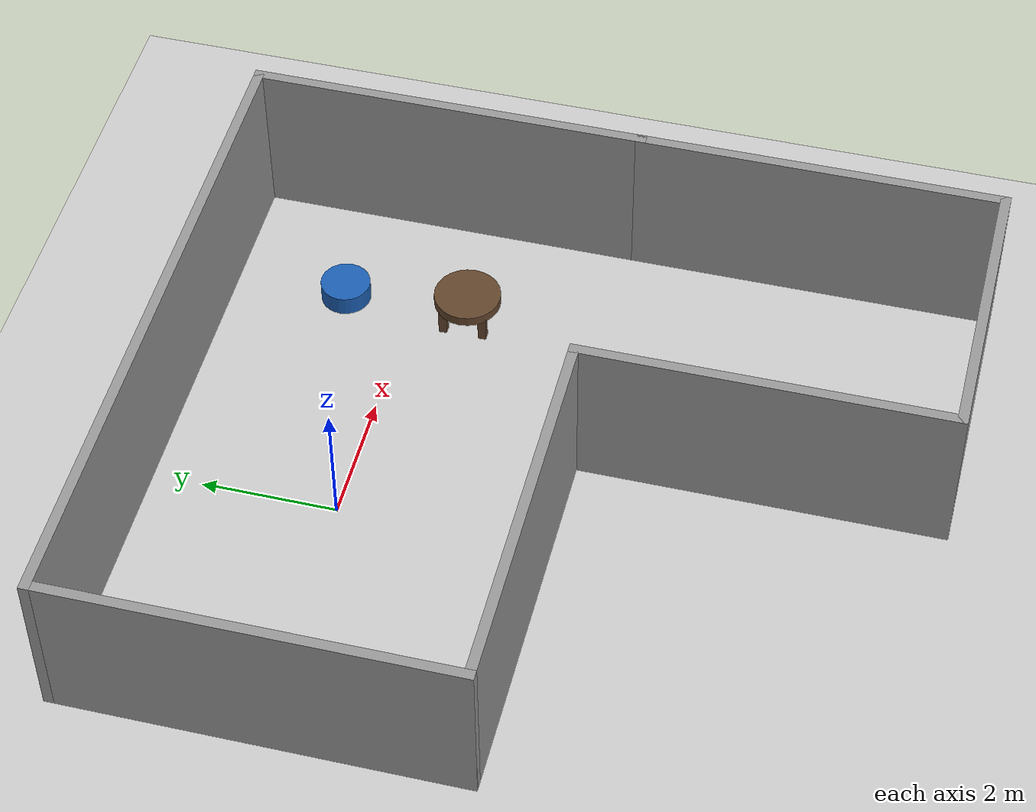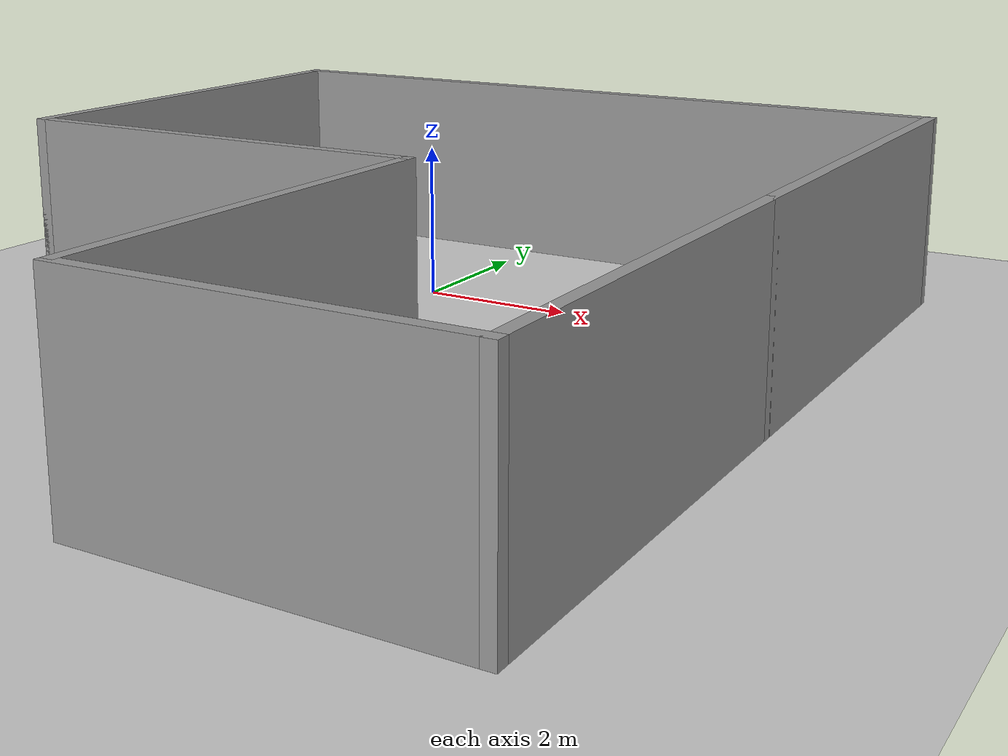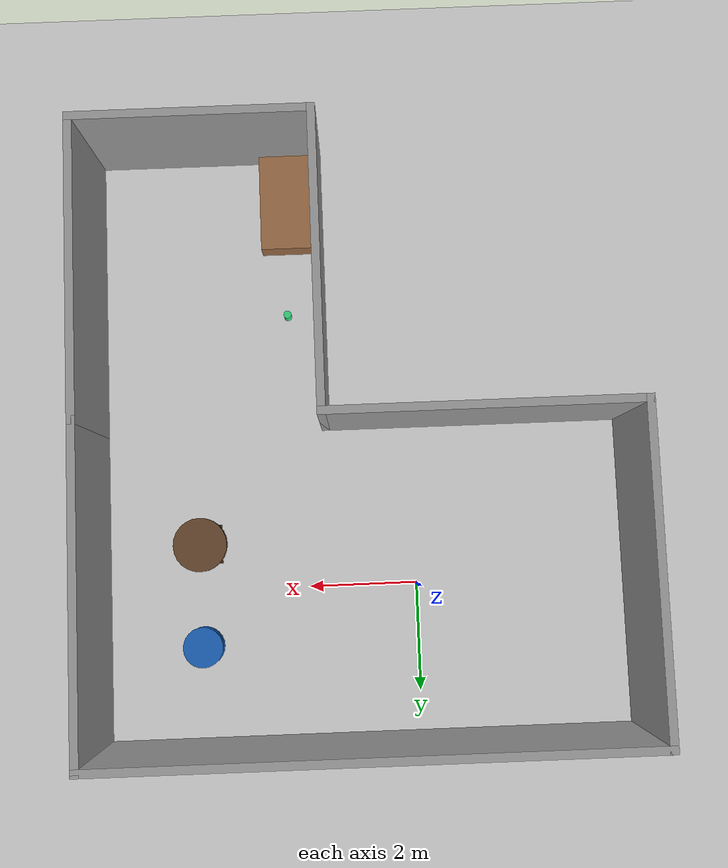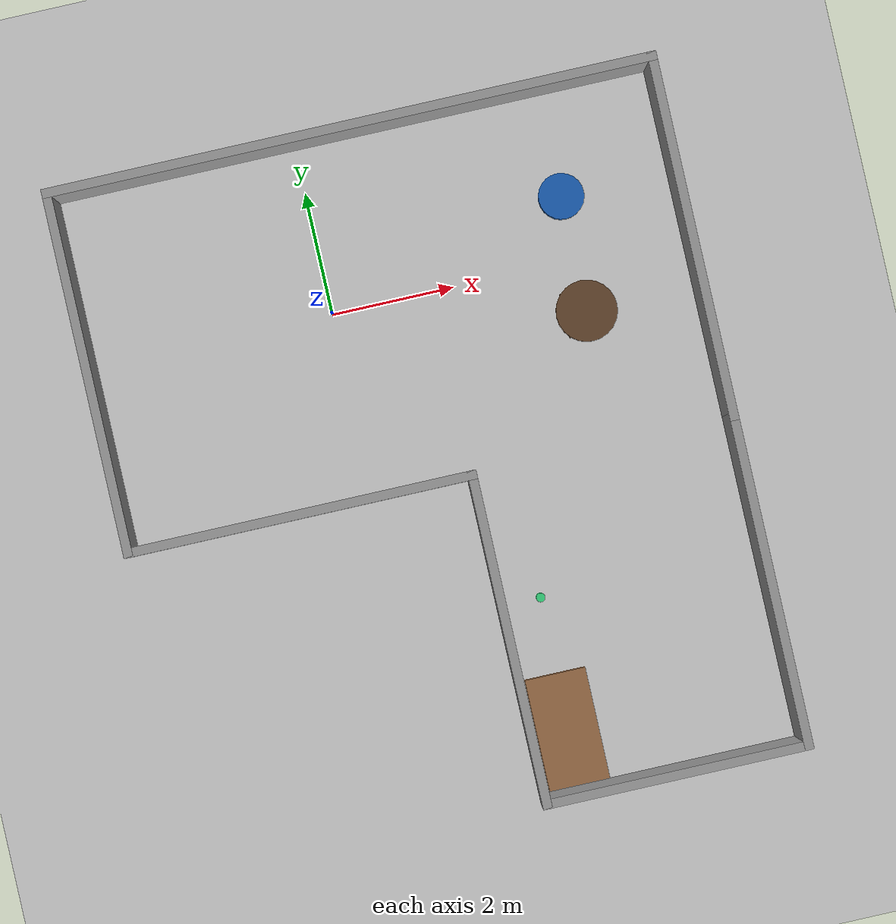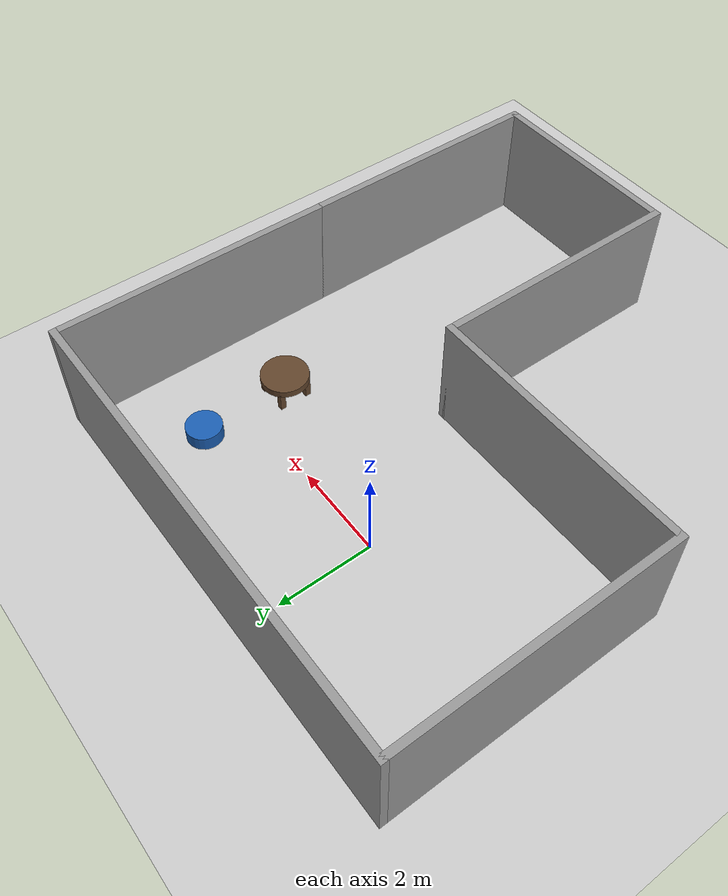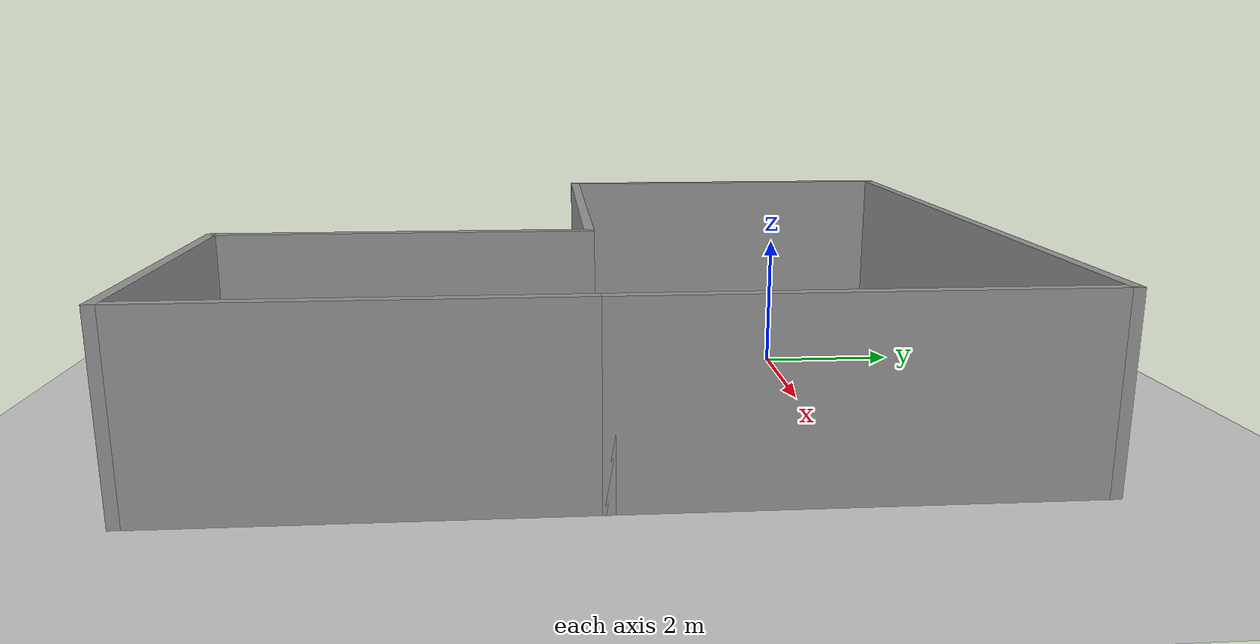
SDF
<sdf version="1.7">
 <world name="default">
  <light name="sun" type="directional">
   <pose>0 0 10 0 -0 0</pose>
   <diffuse>0.8 0.8 0.8 1</diffuse>
   <specular>0.2 0.2 0.2 1</specular>
   <attenuation>
    <range>1000</range>
    <constant>0.9</constant>
    <linear>0.01</linear>
    <quadratic>0.001</quadratic>
   </attenuation>
   <direction>-0.5 0.1 -0.9</direction>
   <spot><inner_angle>0</inner_angle><outer_angle>0</outer_angle><falloff>0</falloff></spot>
  </light>
  <model name="ground_plane">
   <static>1</static>
   <link name="link">
    <collision name="collision">
     <geometry><plane><normal>0 0 1</normal><size>100 100</size></plane></geometry>
     <surface><friction><ode><mu>100</mu><mu2>50</mu2></ode></friction></surface>
    </collision>
    <visual name="visual">
     <cast_shadows>0</cast_shadows>
     <geometry><plane><normal>0 0 1</normal><size>100 100</size></plane></geometry>
     <material>
      <script><uri>file://media/materials/scripts/gazebo.material</uri><name>Gazebo/Grey</name></script>
     </material>
    </visual>
   </link>
  </model>
  <gravity>0 0 -9.8</gravity>
  <magnetic_field>6e-06 2.3e-05 -4.2e-05</magnetic_field>
  <atmosphere type="adiabatic"/>
  <physics type="ode">
   <max_step_size>0.001</max_step_size>
   <real_time_factor>1</real_time_factor>
   <real_time_update_rate>1000</real_time_update_rate>
  </physics>
  <scene><ambient>0.4 0.4 0.4 1</ambient><background>0.7 0.7 0.7 1</background><shadows>1</shadows></scene>
  <audio><device>default</device></audio>
  <spherical_coordinates>
   <surface_model>EARTH_WGS84</surface_model>
   <latitude_deg>0</latitude_deg>
   <longitude_deg>0</longitude_deg>
   <elevation>0</elevation>
   <heading_deg>0</heading_deg>
  </spherical_coordinates>
  <model name="lan_canzhaowu1">
   <link name="link">
    <inertial>
     <mass>1</mass>
     <inertia><ixx>0.145833</ixx><ixy>0</ixy><ixz>0</ixz><iyy>0.145833</iyy><iyz>0</iyz><izz>0.125</izz></inertia>
    </inertial>
    <visual name="visual">
     <geometry><cylinder><radius>0.373748</radius><length>0.308137</length></cylinder></geometry>
     <material>
      <script><name>Gazebo/Grey</name><uri>file://media/materials/scripts/gazebo.material</uri></script>
      <shader type="pixel"><normal_map>__default__</normal_map></shader>
      <ambient>0.102 0.373 0.706 1</ambient>
      <diffuse>0.7 0.7 0.7 1</diffuse>
      <specular>0.01 0.01 0.01 1</specular>
      <emissive>0 0 0 1</emissive>
     </material>
    </visual>
    <collision name="collision">
     <geometry><cylinder><radius>0.373748</radius><length>0.308137</length></cylinder></geometry>
     <surface>
      <friction>
       <ode><mu>1</mu><mu2>1</mu2><fdir1>0 0 0</fdir1><slip1>0</slip1><slip2>0</slip2></ode>
       <torsional>
        <coefficient>1</coefficient>
        <patch_radius>0</patch_radius>
        <surface_radius>0</surface_radius>
        <use_patch_radius>1</use_patch_radius>
        <ode><slip>0</slip></ode>
       </torsional>
      </friction>
      <bounce><restitution_coefficient>0</restitution_coefficient><threshold>1e+06</threshold></bounce>
      <contact>
       <collide_without_contact>0</collide_without_contact>
       <collide_without_contact_bitmask>1</collide_without_contact_bitmask>
       <collide_bitmask>1</collide_bitmask>
       <ode>
        <soft_cfm>0</soft_cfm>
        <soft_erp>0.2</soft_erp>
        <kp>1e+13</kp>
        <kd>1</kd>
        <max_vel>0.01</max_vel>
        <min_depth>0</min_depth>
       </ode>
       <bullet>
        <split_impulse>1</split_impulse>
        <split_impulse_penetration_threshold>-0.01</split_impulse_penetration_threshold>
        <soft_cfm>0</soft_cfm>
        <soft_erp>0.2</soft_erp>
        <kp>1e+13</kp>
        <kd>1</kd>
       </bullet>
      </contact>
     </surface>
    </collision>
   </link>
   <static>0</static>
   <pose>4.02725 1.04197 0.154068 0 -0 0</pose>
  </model>
  <model name="zuozi4">
   <link name="link">
    <inertial>
     <mass>0.152216</mass>
     <inertia>
      <ixx>0.00980743</ixx>
      <ixy>0</ixy>
      <ixz>0</ixz>
      <iyy>0.00980743</iyy>
      <iyz>0</iyz>
      <izz>0.0190271</izz>
     </inertia>
    </inertial>
    <pose>0 0.025356 -0.074591 0 -0 0</pose>
    <visual name="visual">
     <geometry><cylinder><radius>0.5</radius><length>0.152217</length></cylinder></geometry>
     <material>
      <script><name>Gazebo/Grey</name><uri>file://media/materials/scripts/gazebo.material</uri></script>
      <shader type="pixel"><normal_map>__default__</normal_map></shader>
      <ambient>0.388 0.271 0.173 1</ambient>
      <diffuse>0.7 0.7 0.7 1</diffuse>
      <specular>0.01 0.01 0.01 1</specular>
      <emissive>0 0 0 1</emissive>
     </material>
    </visual>
    <collision name="collision">
     <geometry><cylinder><radius>0.5</radius><length>0.152217</length></cylinder></geometry>
     <surface>
      <friction>
       <ode><mu>1</mu><mu2>1</mu2><fdir1>0 0 0</fdir1><slip1>0</slip1><slip2>0</slip2></ode>
       <torsional>
        <coefficient>1</coefficient>
        <patch_radius>0</patch_radius>
        <surface_radius>0</surface_radius>
        <use_patch_radius>1</use_patch_radius>
        <ode><slip>0</slip></ode>
       </torsional>
      </friction>
      <bounce><restitution_coefficient>0</restitution_coefficient><threshold>1e+06</threshold></bounce>
      <contact>
       <collide_without_contact>0</collide_without_contact>
       <collide_without_contact_bitmask>1</collide_without_contact_bitmask>
       <collide_bitmask>1</collide_bitmask>
       <ode>
        <soft_cfm>0</soft_cfm>
        <soft_erp>0.2</soft_erp>
        <kp>1e+13</kp>
        <kd>1</kd>
        <max_vel>0.01</max_vel>
        <min_depth>0</min_depth>
       </ode>
       <bullet>
        <split_impulse>1</split_impulse>
        <split_impulse_penetration_threshold>-0.01</split_impulse_penetration_threshold>
        <soft_cfm>0</soft_cfm>
        <soft_erp>0.2</soft_erp>
        <kp>1e+13</kp>
        <kd>1</kd>
       </bullet>
      </contact>
     </surface>
    </collision>
   </link>
   <link name="link_1">
    <inertial>
     <mass>0.00581735</mass>
     <inertia>
      <ixx>9.222e-05</ixx>
      <ixy>0</ixy>
      <ixz>0</ixz>
      <iyy>9.12e-05</iyy>
      <iyz>0</iyz>
      <izz>1.353e-05</izz>
     </inertia>
    </inertial>
    <pose>-0.3 0.325356 -0.324591 0 -0 0</pose>
    <visual name="visual">
     <geometry><box><size>0.113572 0.122532 0.418601</size></box></geometry>
     <material>
      <lighting>1</lighting>
      <script><uri>file://media/materials/scripts/gazebo.material</uri><name>Gazebo/Grey</name></script>
      <shader type="pixel"><normal_map>__default__</normal_map></shader>
      <ambient>0.388 0.271 0.173 1</ambient>
      <diffuse>0.7 0.7 0.7 1</diffuse>
      <specular>0.01 0.01 0.01 1</specular>
      <emissive>0 0 0 1</emissive>
     </material>
    </visual>
    <collision name="collision">
     <geometry><box><size>0.113572 0.122532 0.418601</size></box></geometry>
     <surface>
      <friction>
       <ode><mu>1</mu><mu2>1</mu2><fdir1>0 0 0</fdir1><slip1>0</slip1><slip2>0</slip2></ode>
       <torsional>
        <coefficient>1</coefficient>
        <patch_radius>0</patch_radius>
        <surface_radius>0</surface_radius>
        <use_patch_radius>1</use_patch_radius>
        <ode><slip>0</slip></ode>
       </torsional>
      </friction>
      <bounce><restitution_coefficient>0</restitution_coefficient><threshold>1e+06</threshold></bounce>
      <contact>
       <collide_without_contact>0</collide_without_contact>
       <collide_without_contact_bitmask>1</collide_without_contact_bitmask>
       <collide_bitmask>1</collide_bitmask>
       <ode>
        <soft_cfm>0</soft_cfm>
        <soft_erp>0.2</soft_erp>
        <kp>1e+13</kp>
        <kd>1</kd>
        <max_vel>0.01</max_vel>
        <min_depth>0</min_depth>
       </ode>
       <bullet>
        <split_impulse>1</split_impulse>
        <split_impulse_penetration_threshold>-0.01</split_impulse_penetration_threshold>
        <soft_cfm>0</soft_cfm>
        <soft_erp>0.2</soft_erp>
        <kp>1e+13</kp>
        <kd>1</kd>
       </bullet>
      </contact>
     </surface>
    </collision>
   </link>
   <link name="link_1_clone">
    <inertial>
     <mass>0.00581735</mass>
     <inertia>
      <ixx>9.222e-05</ixx>
      <ixy>0</ixy>
      <ixz>0</ixz>
      <iyy>9.12e-05</iyy>
      <iyz>0</iyz>
      <izz>1.353e-05</izz>
     </inertia>
    </inertial>
    <pose>0.3 0.325356 -0.324591 0 -0 0</pose>
    <visual name="visual">
     <geometry><box><size>0.113572 0.122532 0.418601</size></box></geometry>
     <material>
      <lighting>1</lighting>
      <script><uri>file://media/materials/scripts/gazebo.material</uri><name>Gazebo/Grey</name></script>
      <shader type="pixel"><normal_map>__default__</normal_map></shader>
      <ambient>0.388 0.271 0.173 1</ambient>
      <diffuse>0.7 0.7 0.7 1</diffuse>
      <specular>0.01 0.01 0.01 1</specular>
      <emissive>0 0 0 1</emissive>
     </material>
    </visual>
    <collision name="collision">
     <geometry><box><size>0.113572 0.122532 0.418601</size></box></geometry>
     <surface>
      <friction>
       <ode><mu>1</mu><mu2>1</mu2><fdir1>0 0 0</fdir1><slip1>0</slip1><slip2>0</slip2></ode>
       <torsional>
        <coefficient>1</coefficient>
        <patch_radius>0</patch_radius>
        <surface_radius>0</surface_radius>
        <use_patch_radius>1</use_patch_radius>
        <ode><slip>0</slip></ode>
       </torsional>
      </friction>
      <bounce><restitution_coefficient>0</restitution_coefficient><threshold>1e+06</threshold></bounce>
      <contact>
       <collide_without_contact>0</collide_without_contact>
       <collide_without_contact_bitmask>1</collide_without_contact_bitmask>
       <collide_bitmask>1</collide_bitmask>
       <ode>
        <soft_cfm>0</soft_cfm>
        <soft_erp>0.2</soft_erp>
        <kp>1e+13</kp>
        <kd>1</kd>
        <max_vel>0.01</max_vel>
        <min_depth>0</min_depth>
       </ode>
       <bullet>
        <split_impulse>1</split_impulse>
        <split_impulse_penetration_threshold>-0.01</split_impulse_penetration_threshold>
        <soft_cfm>0</soft_cfm>
        <soft_erp>0.2</soft_erp>
        <kp>1e+13</kp>
        <kd>1</kd>
       </bullet>
      </contact>
     </surface>
    </collision>
   </link>
   <link name="link_1_clone_0">
    <inertial>
     <mass>0.00581735</mass>
     <inertia>
      <ixx>9.222e-05</ixx>
      <ixy>0</ixy>
      <ixz>0</ixz>
      <iyy>9.12e-05</iyy>
      <iyz>0</iyz>
      <izz>1.353e-05</izz>
     </inertia>
    </inertial>
    <pose>0.3 -0.274644 -0.324591 0 -0 0</pose>
    <visual name="visual">
     <geometry><box><size>0.113572 0.122532 0.418601</size></box></geometry>
     <material>
      <lighting>1</lighting>
      <script><uri>file://media/materials/scripts/gazebo.material</uri><name>Gazebo/Grey</name></script>
      <shader type="pixel"><normal_map>__default__</normal_map></shader>
      <ambient>0.388 0.271 0.173 1</ambient>
      <diffuse>0.7 0.7 0.7 1</diffuse>
      <specular>0.01 0.01 0.01 1</specular>
      <emissive>0 0 0 1</emissive>
     </material>
    </visual>
    <collision name="collision">
     <geometry><box><size>0.113572 0.122532 0.418601</size></box></geometry>
     <surface>
      <friction>
       <ode><mu>1</mu><mu2>1</mu2><fdir1>0 0 0</fdir1><slip1>0</slip1><slip2>0</slip2></ode>
       <torsional>
        <coefficient>1</coefficient>
        <patch_radius>0</patch_radius>
        <surface_radius>0</surface_radius>
        <use_patch_radius>1</use_patch_radius>
        <ode><slip>0</slip></ode>
       </torsional>
      </friction>
      <bounce><restitution_coefficient>0</restitution_coefficient><threshold>1e+06</threshold></bounce>
      <contact>
       <collide_without_contact>0</collide_without_contact>
       <collide_without_contact_bitmask>1</collide_without_contact_bitmask>
       <collide_bitmask>1</collide_bitmask>
       <ode>
        <soft_cfm>0</soft_cfm>
        <soft_erp>0.2</soft_erp>
        <kp>1e+13</kp>
        <kd>1</kd>
        <max_vel>0.01</max_vel>
        <min_depth>0</min_depth>
       </ode>
       <bullet>
        <split_impulse>1</split_impulse>
        <split_impulse_penetration_threshold>-0.01</split_impulse_penetration_threshold>
        <soft_cfm>0</soft_cfm>
        <soft_erp>0.2</soft_erp>
        <kp>1e+13</kp>
        <kd>1</kd>
       </bullet>
      </contact>
     </surface>
    </collision>
   </link>
   <link name="link_1_clone_1">
    <inertial>
     <mass>0.00581735</mass>
     <inertia>
      <ixx>9.222e-05</ixx>
      <ixy>0</ixy>
      <ixz>0</ixz>
      <iyy>9.12e-05</iyy>
      <iyz>0</iyz>
      <izz>1.353e-05</izz>
     </inertia>
    </inertial>
    <pose>-0.3 -0.274644 -0.324591 0 -0 0</pose>
    <visual name="visual">
     <geometry><box><size>0.113572 0.122532 0.418601</size></box></geometry>
     <material>
      <lighting>1</lighting>
      <script><uri>file://media/materials/scripts/gazebo.material</uri><name>Gazebo/Grey</name></script>
      <shader type="pixel"><normal_map>__default__</normal_map></shader>
      <ambient>0.388 0.271 0.173 1</ambient>
      <diffuse>0.7 0.7 0.7 1</diffuse>
      <specular>0.01 0.01 0.01 1</specular>
      <emissive>0 0 0 1</emissive>
     </material>
    </visual>
    <collision name="collision">
     <geometry><box><size>0.113572 0.122532 0.418601</size></box></geometry>
     <surface>
      <friction>
       <ode><mu>1</mu><mu2>1</mu2><fdir1>0 0 0</fdir1><slip1>0</slip1><slip2>0</slip2></ode>
       <torsional>
        <coefficient>1</coefficient>
        <patch_radius>0</patch_radius>
        <surface_radius>0</surface_radius>
        <use_patch_radius>1</use_patch_radius>
        <ode><slip>0</slip></ode>
       </torsional>
      </friction>
      <bounce><restitution_coefficient>0</restitution_coefficient><threshold>1e+06</threshold></bounce>
      <contact>
       <collide_without_contact>0</collide_without_contact>
       <collide_without_contact_bitmask>1</collide_without_contact_bitmask>
       <collide_bitmask>1</collide_bitmask>
       <ode>
        <soft_cfm>0</soft_cfm>
        <soft_erp>0.2</soft_erp>
        <kp>1e+13</kp>
        <kd>1</kd>
        <max_vel>0.01</max_vel>
        <min_depth>0</min_depth>
       </ode>
       <bullet>
        <split_impulse>1</split_impulse>
        <split_impulse_penetration_threshold>-0.01</split_impulse_penetration_threshold>
        <soft_cfm>0</soft_cfm>
        <soft_erp>0.2</soft_erp>
        <kp>1e+13</kp>
        <kd>1</kd>
       </bullet>
      </contact>
     </surface>
    </collision>
   </link>
   <joint name="link_JOINT_0" type="revolute">
    <parent>link</parent>
    <child>link_1</child>
    <axis>
     <xyz>1 0 0</xyz>
     <limit>
      <lower>-1.79769e+308</lower>
      <upper>1.79769e+308</upper>
      <effort>-1</effort>
      <velocity>-1</velocity>
     </limit>
     <dynamics>
      <spring_reference>0</spring_reference>
      <spring_stiffness>0</spring_stiffness>
      <damping>0</damping>
     </dynamics>
    </axis>
    <physics>
     <ode><limit><cfm>0</cfm><erp>0.2</erp></limit><suspension><cfm>0</cfm><erp>0.2</erp></suspension></ode>
    </physics>
   </joint>
   <joint name="link_JOINT_1" type="revolute">
    <parent>link</parent>
    <child>link_1_clone</child>
    <axis>
     <xyz>1 0 0</xyz>
     <limit>
      <lower>-1.79769e+308</lower>
      <upper>1.79769e+308</upper>
      <effort>-1</effort>
      <velocity>-1</velocity>
     </limit>
     <dynamics>
      <spring_reference>0</spring_reference>
      <spring_stiffness>0</spring_stiffness>
      <damping>0</damping>
     </dynamics>
    </axis>
    <physics>
     <ode><limit><cfm>0</cfm><erp>0.2</erp></limit><suspension><cfm>0</cfm><erp>0.2</erp></suspension></ode>
    </physics>
   </joint>
   <joint name="link_JOINT_2" type="revolute">
    <parent>link</parent>
    <child>link_1_clone_0</child>
    <axis>
     <xyz>1 0 0</xyz>
     <limit>
      <lower>-1.79769e+308</lower>
      <upper>1.79769e+308</upper>
      <effort>-1</effort>
      <velocity>-1</velocity>
     </limit>
     <dynamics>
      <spring_reference>0</spring_reference>
      <spring_stiffness>0</spring_stiffness>
      <damping>0</damping>
     </dynamics>
    </axis>
    <physics>
     <ode><limit><cfm>0</cfm><erp>0.2</erp></limit><suspension><cfm>0</cfm><erp>0.2</erp></suspension></ode>
    </physics>
   </joint>
   <joint name="link_JOINT_3" type="revolute">
    <parent>link</parent>
    <child>link_1_clone_1</child>
    <axis>
     <xyz>1 0 0</xyz>
     <limit>
      <lower>-1.79769e+308</lower>
      <upper>1.79769e+308</upper>
      <effort>-1</effort>
      <velocity>-1</velocity>
     </limit>
     <dynamics>
      <spring_reference>0</spring_reference>
      <spring_stiffness>0</spring_stiffness>
      <damping>0</damping>
     </dynamics>
    </axis>
    <physics>
     <ode><limit><cfm>0</cfm><erp>0.2</erp></limit><suspension><cfm>0</cfm><erp>0.2</erp></suspension></ode>
    </physics>
   </joint>
   <static>0</static>
   <pose>4.01301 -0.888203 0.533891 1e-06 -0 0.009792</pose>
  </model>
  <model name="Untitled5">
   <pose>0.932417 -2.79553 0 0 -0 0</pose>
   <link name="Wall_10">
    <collision name="Wall_10_Collision">
     <geometry><box><size>6 0.15 2.5</size></box></geometry>
     <pose>0 0 1.25 0 -0 0</pose>
    </collision>
    <visual name="Wall_10_Visual">
     <pose>0 0 1.25 0 -0 0</pose>
     <geometry><box><size>6 0.15 2.5</size></box></geometry>
     <material>
      <script><uri>file://media/materials/scripts/gazebo.material</uri><name>Gazebo/Grey</name></script>
      <ambient>1 1 1 1</ambient>
     </material>
     <meta><layer>0</layer></meta>
    </visual>
    <pose>4.925 2.675 0 0 -0 1.5708</pose>
   </link>
   <link name="Wall_11">
    <collision name="Wall_11_Collision">
     <geometry><box><size>10 0.15 2.5</size></box></geometry>
     <pose>0 0 1.25 0 -0 0</pose>
    </collision>
    <visual name="Wall_11_Visual">
     <pose>0 0 1.25 0 -0 0</pose>
     <geometry><box><size>10 0.15 2.5</size></box></geometry>
     <material>
      <script><uri>file://media/materials/scripts/gazebo.material</uri><name>Gazebo/Grey</name></script>
      <ambient>1 1 1 1</ambient>
     </material>
     <meta><layer>0</layer></meta>
    </visual>
    <pose>-0 5.6 0 0 -0 3.14159</pose>
   </link>
   <link name="Wall_12">
    <collision name="Wall_12_Collision">
     <geometry><box><size>6 0.15 2.5</size></box></geometry>
     <pose>0 0 1.25 0 -0 0</pose>
    </collision>
    <visual name="Wall_12_Visual">
     <pose>0 0 1.25 0 -0 0</pose>
     <geometry><box><size>6 0.15 2.5</size></box></geometry>
     <material>
      <script><uri>file://media/materials/scripts/gazebo.material</uri><name>Gazebo/Grey</name></script>
      <ambient>1 1 1 1</ambient>
     </material>
     <meta><layer>0</layer></meta>
    </visual>
    <pose>-4.925 2.675 0 0 -0 -1.5708</pose>
   </link>
   <link name="Wall_14">
    <collision name="Wall_14_Collision">
     <geometry><box><size>5.75 0.15 2.5</size></box></geometry>
     <pose>0 0 1.25 0 -0 0</pose>
    </collision>
    <visual name="Wall_14_Visual">
     <pose>0 0 1.25 0 -0 0</pose>
     <geometry><box><size>5.75 0.15 2.5</size></box></geometry>
     <material>
      <script><uri>file://media/materials/scripts/gazebo.material</uri><name>Gazebo/Grey</name></script>
      <ambient>1 1 1 1</ambient>
     </material>
     <meta><layer>0</layer></meta>
    </visual>
    <pose>-2.125 -0.25 0 0 -0 0</pose>
   </link>
   <link name="Wall_15">
    <collision name="Wall_15_Collision">
     <geometry><box><size>5.5 0.15 2.5</size></box></geometry>
     <pose>0 0 1.25 0 -0 0</pose>
    </collision>
    <visual name="Wall_15_Visual">
     <pose>0 0 1.25 0 -0 0</pose>
     <geometry><box><size>5.5 0.15 2.5</size></box></geometry>
     <material>
      <script><uri>file://media/materials/scripts/gazebo.material</uri><name>Gazebo/Grey</name></script>
      <ambient>1 1 1 1</ambient>
     </material>
     <meta><layer>0</layer></meta>
    </visual>
    <pose>0.675 -2.925 0 0 -0 -1.5708</pose>
   </link>
   <link name="Wall_21">
    <collision name="Wall_21_Collision">
     <geometry><box><size>5.5 0.15 2.5</size></box></geometry>
     <pose>0 0 1.25 0 -0 0</pose>
    </collision>
    <visual name="Wall_21_Visual">
     <pose>0 0 1.25 0 -0 0</pose>
     <geometry><box><size>5.5 0.15 2.5</size></box></geometry>
     <material>
      <script><uri>file://media/materials/scripts/gazebo.material</uri><name>Gazebo/Grey</name></script>
      <ambient>1 1 1 1</ambient>
     </material>
     <meta><layer>0</layer></meta>
    </visual>
    <pose>4.925 -2.925 0 0 -0 -1.5708</pose>
   </link>
   <link name="Wall_22">
    <collision name="Wall_22_Collision">
     <geometry><box><size>4.4 0.15 2.5</size></box></geometry>
     <pose>0 0 1.25 0 -0 0</pose>
    </collision>
    <visual name="Wall_22_Visual">
     <pose>0 0 1.25 0 -0 0</pose>
     <geometry><box><size>4.4 0.15 2.5</size></box></geometry>
     <material>
      <script><uri>file://media/materials/scripts/gazebo.material</uri><name>Gazebo/Grey</name></script>
      <ambient>1 1 1 1</ambient>
     </material>
     <meta><layer>0</layer></meta>
    </visual>
    <pose>2.8 -5.6 0 0 -0 -3.14159</pose>
   </link>
   <static>1</static>
  </model>
  <model name="lv_lajitong">
   <link name="link">
    <inertial>
     <mass>1</mass>
     <inertia><ixx>0.145833</ixx><ixy>0</ixy><ixz>0</ixz><iyy>0.145833</iyy><iyz>0</iyz><izz>0.125</izz></inertia>
    </inertial>
    <visual name="visual">
     <geometry><cylinder><radius>0.0738659</radius><length>0.256539</length></cylinder></geometry>
     <material>
      <script><name>Gazebo/Grey</name><uri>file://media/materials/scripts/gazebo.material</uri></script>
      <shader type="pixel"><normal_map>__default__</normal_map></shader>
      <ambient>0.2 0.82 0.478 1</ambient>
      <diffuse>0.7 0.7 0.7 1</diffuse>
      <specular>0.01 0.01 0.01 1</specular>
      <emissive>0 0 0 1</emissive>
     </material>
    </visual>
    <collision name="collision">
     <geometry><cylinder><radius>0.073866</radius><length>0.256539</length></cylinder></geometry>
     <surface>
      <friction>
       <ode><mu>1</mu><mu2>1</mu2><fdir1>0 0 0</fdir1><slip1>0</slip1><slip2>0</slip2></ode>
       <torsional>
        <coefficient>1</coefficient>
        <patch_radius>0</patch_radius>
        <surface_radius>0</surface_radius>
        <use_patch_radius>1</use_patch_radius>
        <ode><slip>0</slip></ode>
       </torsional>
      </friction>
      <bounce><restitution_coefficient>0</restitution_coefficient><threshold>1e+06</threshold></bounce>
      <contact>
       <collide_without_contact>0</collide_without_contact>
       <collide_without_contact_bitmask>1</collide_without_contact_bitmask>
       <collide_bitmask>1</collide_bitmask>
       <ode>
        <soft_cfm>0</soft_cfm>
        <soft_erp>0.2</soft_erp>
        <kp>1e+13</kp>
        <kd>1</kd>
        <max_vel>0.01</max_vel>
        <min_depth>0</min_depth>
       </ode>
       <bullet>
        <split_impulse>1</split_impulse>
        <split_impulse_penetration_threshold>-0.01</split_impulse_penetration_threshold>
        <soft_cfm>0</soft_cfm>
        <soft_erp>0.2</soft_erp>
        <kp>1e+13</kp>
        <kd>1</kd>
       </bullet>
      </contact>
     </surface>
    </collision>
   </link>
   <static>0</static>
   <pose>2.26511 -5.22014 0.12826 0 -0 0.001788</pose>
  </model>
  <model name="zong_chuang">
   <link name="link">
    <inertial>
     <mass>1</mass>
     <inertia>
      <ixx>0.166667</ixx>
      <ixy>0</ixy>
      <ixz>0</ixz>
      <iyy>0.166667</iyy>
      <iyz>0</iyz>
      <izz>0.166667</izz>
     </inertia>
    </inertial>
    <visual name="visual">
     <geometry><box><size>1 1.83631 0.441286</size></box></geometry>
     <material>
      <script><name>Gazebo/Grey</name><uri>file://media/materials/scripts/gazebo.material</uri></script>
      <shader type="pixel"><normal_map>__default__</normal_map></shader>
      <ambient>0.596 0.416 0.267 1</ambient>
      <diffuse>0.7 0.7 0.7 1</diffuse>
      <specular>0.01 0.01 0.01 1</specular>
      <emissive>0 0 0 1</emissive>
     </material>
    </visual>
    <collision name="collision">
     <geometry><box><size>1 1.83631 0.441286</size></box></geometry>
     <surface>
      <friction>
       <ode><mu>1</mu><mu2>1</mu2><fdir1>0 0 0</fdir1><slip1>0</slip1><slip2>0</slip2></ode>
       <torsional>
        <coefficient>1</coefficient>
        <patch_radius>0</patch_radius>
        <surface_radius>0</surface_radius>
        <use_patch_radius>1</use_patch_radius>
        <ode><slip>0</slip></ode>
       </torsional>
      </friction>
      <bounce><restitution_coefficient>0</restitution_coefficient><threshold>1e+06</threshold></bounce>
      <contact>
       <collide_without_contact>0</collide_without_contact>
       <collide_without_contact_bitmask>1</collide_without_contact_bitmask>
       <collide_bitmask>1</collide_bitmask>
       <ode>
        <soft_cfm>0</soft_cfm>
        <soft_erp>0.2</soft_erp>
        <kp>1e+13</kp>
        <kd>1</kd>
        <max_vel>0.01</max_vel>
        <min_depth>0</min_depth>
       </ode>
       <bullet>
        <split_impulse>1</split_impulse>
        <split_impulse_penetration_threshold>-0.01</split_impulse_penetration_threshold>
        <soft_cfm>0</soft_cfm>
        <soft_erp>0.2</soft_erp>
        <kp>1e+13</kp>
        <kd>1</kd>
       </bullet>
      </contact>
     </surface>
    </collision>
   </link>
   <static>0</static>
   <pose>2.21302 -7.38635 0.220638 0 1e-05 -0.001218</pose>
  </model>
 </world>
</sdf>
